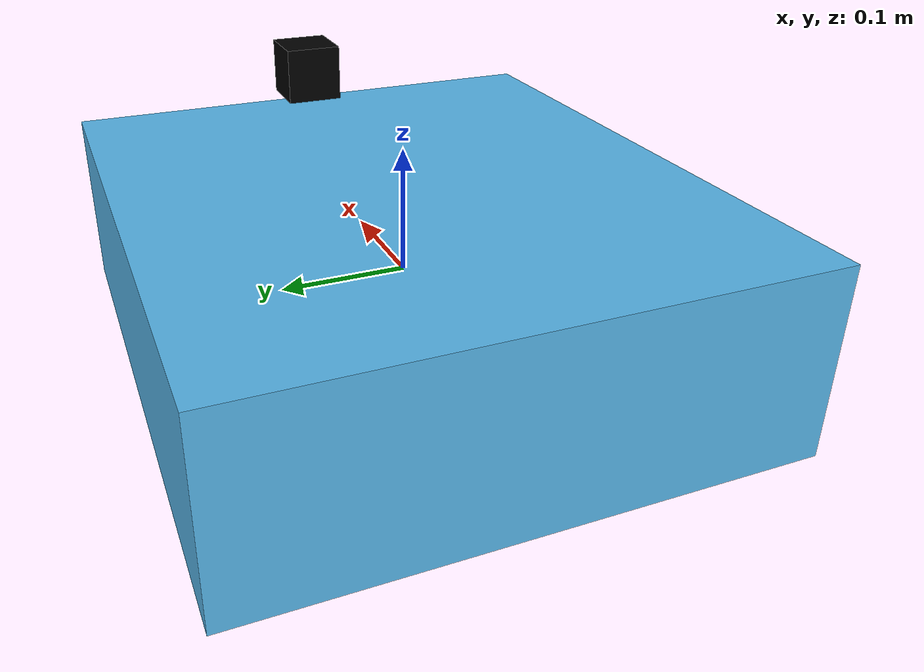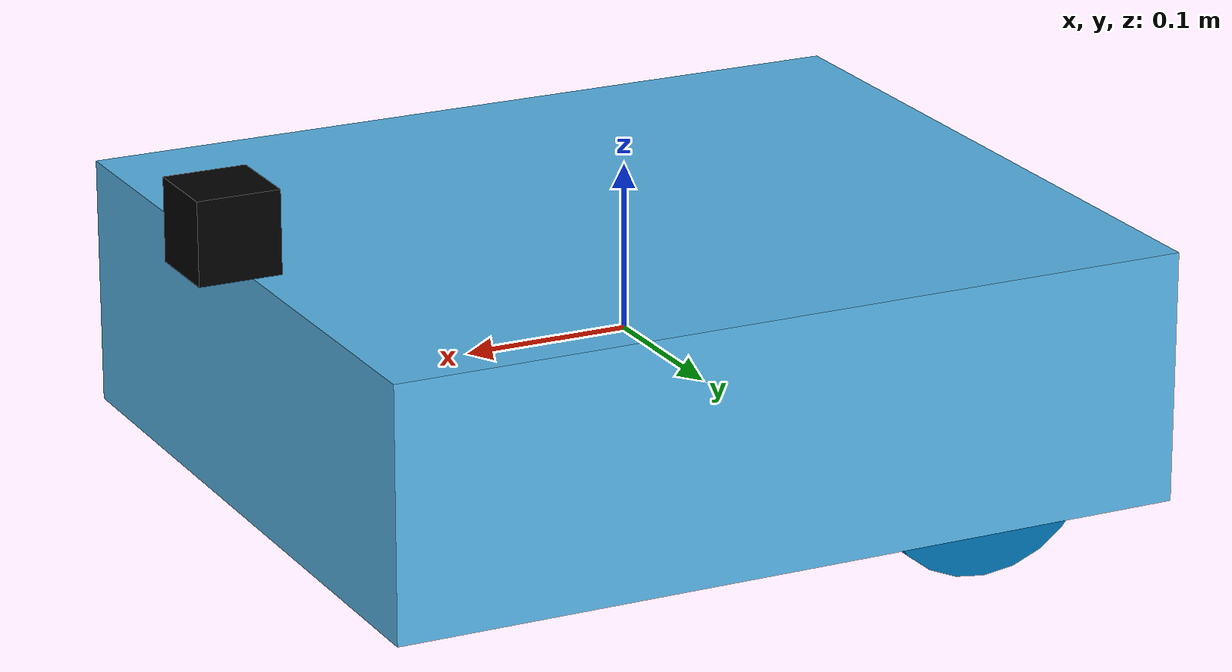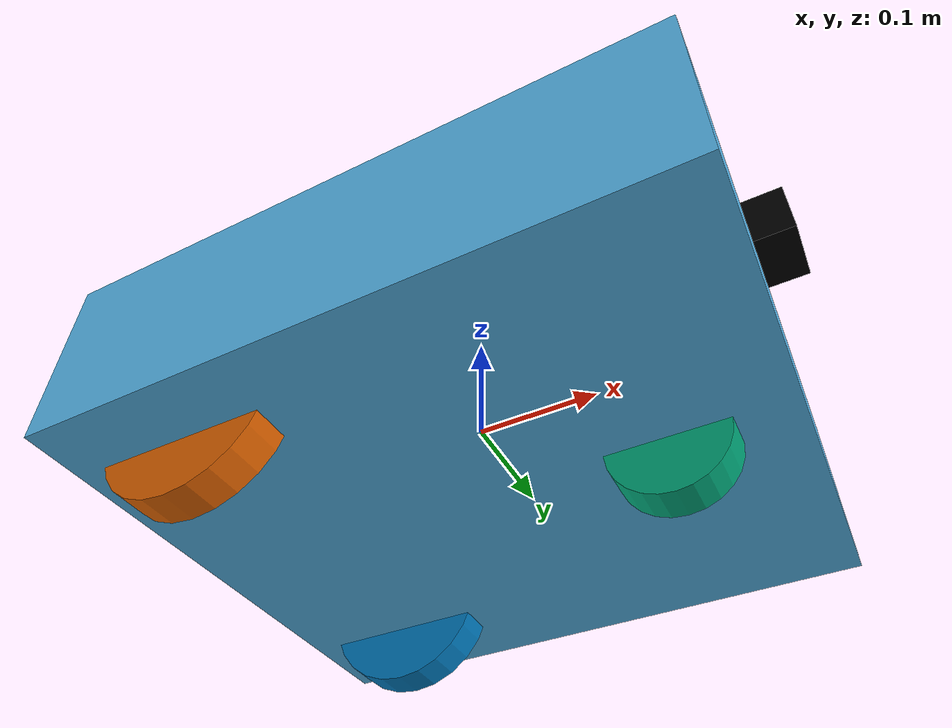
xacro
<?xml version="1.0"?>
<!-- Revolute-Revolute Manipulator -->
<robot name="orne_gamma" xmlns:xacro="http://www.ros.org/wiki/xacro">
  <!-- Constants for robot dimensions -->
  <xacro:property name="PI" value="3.1415926535897931"/>

  <!-- Import Rviz colors -->
  <xacro:include filename="$(find orne_description)/urdf/material_colors.xacro"/>
  <xacro:include filename="$(find orne_description)/urdf/sensors/hokuyo.urdf.xacro"/>
  <!--Base Footprint-->
  <link name="base_footprint" />

  <joint name="base_joint" type="fixed">
    <origin xyz="0 0 0" />
    <parent link="base_footprint" />
    <child link="base_link" />
  </joint>

  <!-- Base Link -->
  <link name="base_link">
    <visual>
      <origin xyz="0.0 0.0 0.0" rpy="0.0 0.0 0.0"/>>
      <geometry>
	    <box size=".485 .43 .15"/>
      </geometry>
    </visual>
    <collision>
      <origin xyz="0.0 0.0 0.0" rpy="0.0 0.0 0.0"/>>
      <geometry>
	    <box size=".485 .43 .15"/>
      </geometry>
    </collision>
    <inertial>
      <mass value="20" />
      <origin xyz="-0.08 0 0" rpy="0 0 0"/>
      <inertia ixx="1" ixy="0" ixz="0" iyy="1" iyz="0" izz="1" />
   </inertial>
 </link>

   <link name="caster">
    <collision name="collision">
      <geometry>
        <cylinder  length="0.03" radius="0.04625"/>
      </geometry>
    </collision>
    <visual name="visual">
      <geometry>
        <cylinder  length="0.03" radius="0.04625"/>
      </geometry>
    </visual>
    </link>

  <joint name="caster_support_joint" type="continuous">
    <axis xyz="0 0 1"/>
    <parent link="base_link"/>
    <child link="caster_support"/>
    <origin xyz="0.15  0.0 -0.075" rpy="0 0 0"/>
  </joint>
  <link name="caster_support">
    <visual name="visual">
      <geometry>
        <box size="0.01 0.01 0.01"/>
      </geometry>
    </visual>
    </link>

  <joint type="continuous" name="caster_joint">
    <origin xyz="0.0 0.0 0.0" rpy="1.57 0 0"/>
    <child link="caster"></child>
    <parent link="caster_support"></parent>
    <axis xyz="0 0 1"/>
    <limit effort="100" velocity="100.0"  lower="-5000" upper="5000" />
  </joint>

  <link name="left_wheel">
    <collision name="collision">
      <geometry>
         <cylinder  length="0.03" radius="0.0725"/>
      </geometry>
    </collision>
    <visual name="visual">
      <geometry>
        <cylinder  length="0.03" radius="0.0725"/>
      </geometry>
    </visual>
    <inertial>
      <mass value="1" />
      <origin xyz="0.15 0.15 -0.05" rpy="1.57 0.0 0.0"/>
      <inertia ixx="0.1" ixy="0" ixz="0" iyy="0.1" iyz="0" izz="0.1" />
    </inertial>
  </link>

  <joint type="continuous" name="left_wheel_joint">
    <origin xyz="-0.15 0.15 -0.05" rpy="1.57 0 0"/>
    <child link="left_wheel"></child>
    <parent link="base_link"></parent>
    <axis xyz="0 0 1"/>
    <limit effort="100" velocity="100.0"  lower="-5000" upper="5000" />
  </joint>

  <link name="right_wheel">
    <collision name="collision">
      <geometry>
         <cylinder  length="0.03" radius="0.0725"/>
      </geometry>
    </collision>
    <visual name="visual">
      <geometry>
        <cylinder  length="0.03" radius="0.0725"/>
      </geometry>
    </visual>
    <inertial>
      <mass value="1" />
      <origin xyz="0 0.0 0"/>
      <inertia ixx="0.1" ixy="0" ixz="0" iyy="0.1" iyz="0" izz="0.1" />
    </inertial>
  </link>

  <joint type="continuous" name="right_wheel_joint">
    <origin xyz="-0.15 -0.15 -0.05" rpy="1.57 0 0"/>
    <child link="right_wheel"></child>
    <parent link="base_link"></parent>
    <axis xyz="0 0 1"/>
    <limit effort="100" velocity="100.0"  lower="-5000" upper="5000" />
  </joint>

  <xacro:sensor_hokuyo name="hokuyo" parent="base_link" size="0.05 0.05 0.05">
    <origin xyz="0.25 0 0.1" rpy="0 0 0"/>
  </xacro:sensor_hokuyo>

  <transmission name="tran1">
    <type>transmission_interface/SimpleTransmission</type>
    <joint name="left_wheel_joint">
      <hardwareInterface>VelocityJointInterface</hardwareInterface>
    </joint>
    <actuator name="left_motor">
      <hardwareInterface>VelocityJointInterface</hardwareInterface>
      <mechanicalReduction>1</mechanicalReduction>
    </actuator>
  </transmission>

  <transmission name="tran2">
    <type>transmission_interface/SimpleTransmission</type>
    <joint name="right_wheel_joint">
      <hardwareInterface>VelocityJointInterface</hardwareInterface>
    </joint>
    <actuator name="right_motor">
      <hardwareInterface>VelocityJointInterface</hardwareInterface>
      <mechanicalReduction>1</mechanicalReduction>
    </actuator>
  </transmission>
</robot>

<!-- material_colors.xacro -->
<robot>
  <material name="black">
    <color rgba="0.0 0.0 0.0 1.0"/>
  </material>
  <material name="brown">
    <color rgba="${222/255} ${207/255} ${195/255} 1.0"/>
  </material>
  <material name="red">
    <color rgba="0.8 0.0 0.0 1.0"/>
  </material>
  <material name="orange">
    <color rgba="${255/255} ${108/255} ${10/255} 1.0"/>
  </material>
  <material name="yellow">
    <color rgba="0.8 0.8 0.0 1.0"/>
  </material>
  <material name="green">
    <color rgba="0.0 0.8 0.0 1.0"/>
  </material>
  <material name="cyan">
    <color rgba="0.0 0.8 0.8 1.0"/>
  </material>
  <material name="bule">
    <color rgba="0.0 0.0 0.8 1.0"/>
  </material>
  <material name="purple">
    <color rgba="0.8 0.0 0.8 1.0"/>
  </material>
  <material name="gray">
    <color rgba="0.5 0.5 0.5 1.0"/>
  </material>
  <material name="white">
    <color rgba="1.0 1.0 1.0 1.0"/>
  </material>
</robot>

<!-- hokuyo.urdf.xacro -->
<robot xmlns:xacro="http://ros.org/wiki/xacro" xmlns:controller="http://playerstage.sourceforge.net/gazebo/xmlschema/#controller" xmlns:interface="http://playerstage.sourceforge.net/gazebo/xmlschema/#interface" name="sensor_hokuyo">
  <xacro:macro name="sensor_hokuyo" params="name parent *origin size">
    <joint name="${name}_joint" type="fixed">
      <axis xyz="1 0 0"/>
      <xacro:insert_block name="origin"/>
      <parent link="${parent}"/>
      <child link="${name}_link"/>
    </joint>
    <link name="${name}_link">
      <inertial>
        <origin xyz="0.0 0.0 0.0" rpy="0.0 0.0 0.0"/>
        <mass value="0.2"/>
        <inertia ixx="0.005" ixy="0.0" ixz="0.0" iyy="0.005" iyz="0.0" izz="0.005"/>
      </inertial>
      <visual>
        <origin rpy="0 0 0" xyz="0 0 0"/>
        <geometry>
          <box size="${size}"/>
        </geometry>
        <material name="black"/>
      </visual>
    </link>
  </xacro:macro>
</robot>
